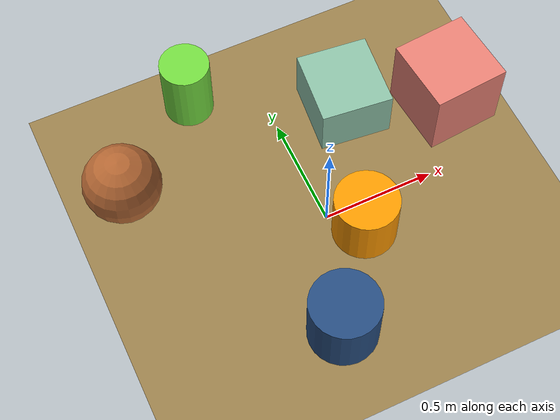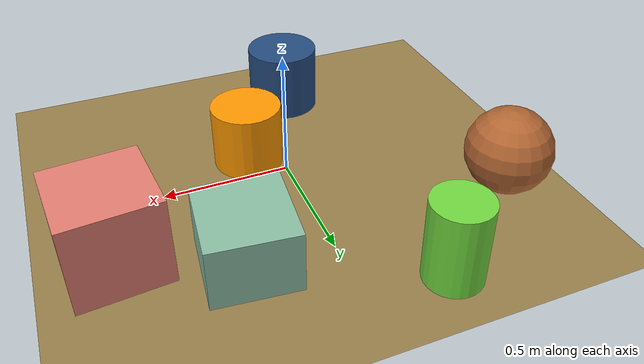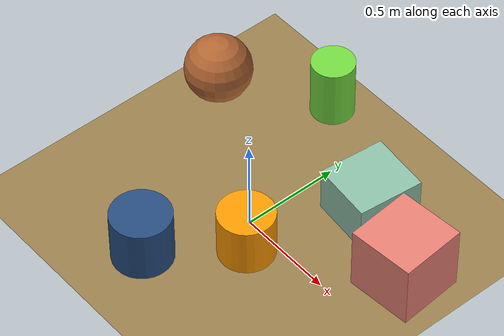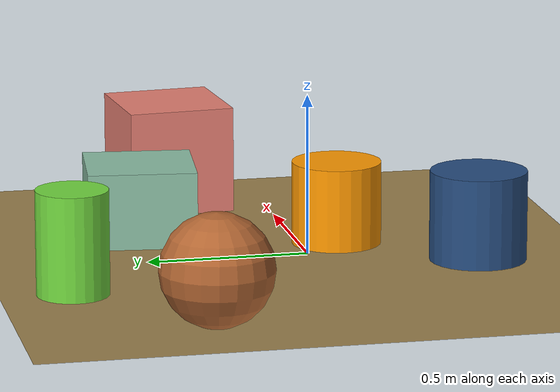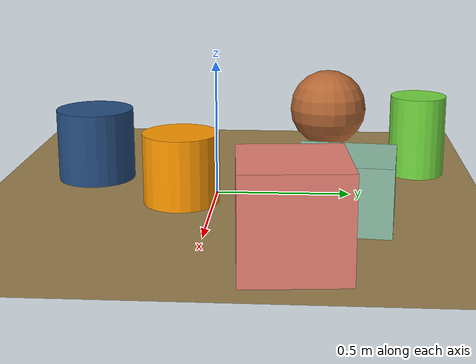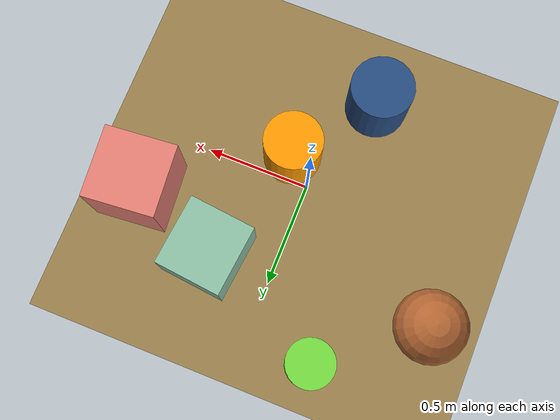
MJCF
<mujoco>
   <asset>
<texture type="skybox" builtin="gradient" rgb1="0.8 0.5 0.1" rgb2="0.4 0.3 0.5" width="500" height="500"/>
<texture name="checker_0" builtin="checker" rgb1="0.1 0.9 0.4" rgb2="0.8 0.8 0.1" width="500" height="500"/>
<texture name="flat_1" builtin="flat" rgb1="1.0 0.6 0.0" rgb2="1.0 0.6 0.0"  width="500" height="500"/>
<texture name="checker_2" builtin="checker" rgb1="1.0 0.9 0.6" rgb2="0.8 0.1 0.3" width="500" height="500"/>
<texture name="checker_3" builtin="checker" rgb1="0.4 0.7 0.6" rgb2="0.7 0.8 0.7" width="500" height="500"/>
<texture name="gradient_4" builtin="gradient" rgb1="0.1 0.4 0.5" rgb2="0.2 0.2 0.5" width="500" height="500"/>
<texture name="gradient_5" builtin="gradient" rgb1="1.0 0.1 0.2" rgb2="0.4 0.7 0.2" width="500" height="500"/><material name="checker_0_mat" reflectance="0.4954070153322959" texrepeat="2 2" texture="checker_0" texuniform="false" />
<material name="flat_1_mat" reflectance="0.7465656382632585" texture="flat_1" texuniform="true"/>
<material name="checker_2_mat" reflectance="0.8589953442301465" texrepeat="4 4" texture="checker_2" texuniform="false" />
<material name="checker_3_mat" reflectance="0.0052307428433109315" texrepeat="3 3" texture="checker_3" texuniform="false" />
<material name="gradient_4_mat" reflectance="0.1882373646947746" texture="gradient_4" texuniform="true"/>
<material name="gradient_5_mat" reflectance="0.4669213557462829" texture="gradient_5" texuniform="true"/>
   </asset>

   <worldbody>
     <geom type="plane" size="1 1 0.1" rgba="0.6 0.5 0.3 1" />
<light pos="-0.6877853260889424 -0.4745991598626431 2" dir="0 0 -1" cutoff="90" diffuse="1 1 1" specular="1 1 1"/>
<geom type="cylinder" pos="-0.31 0.78 0.16" size="0.11 0.16 0.16" material="checker_0_mat" euler="0 0 70" />
<geom type="cylinder" pos="0.12 -0.12 0.13" size="0.14 0.13 0.13" material="flat_1_mat" euler="0 0 51" />
<geom type="box" pos="0.73 0.3 0.17" size="0.17 0.17 0.17" material="checker_2_mat" euler="0 0 5" />
<geom type="box" pos="0.31 0.47 0.12" size="0.17 0.16 0.12" material="checker_3_mat" euler="0 0 84" />
<geom type="cylinder" pos="-0.17 -0.5 0.14" size="0.15 0.14 0.14" material="gradient_4_mat" euler="0 0 88" />
<geom type="sphere" pos="-0.75 0.43 0.17" size="0.17 0.17 0.17" material="gradient_5_mat" euler="0 0 81" /><camera euler="60 0 180" fovy="60" name="camera1" pos="-0.2 -1.5 1"></camera>   </worldbody>
   <visual>
      <headlight diffuse="0.7 0.7 0.7"/>
   </visual>
</mujoco>
